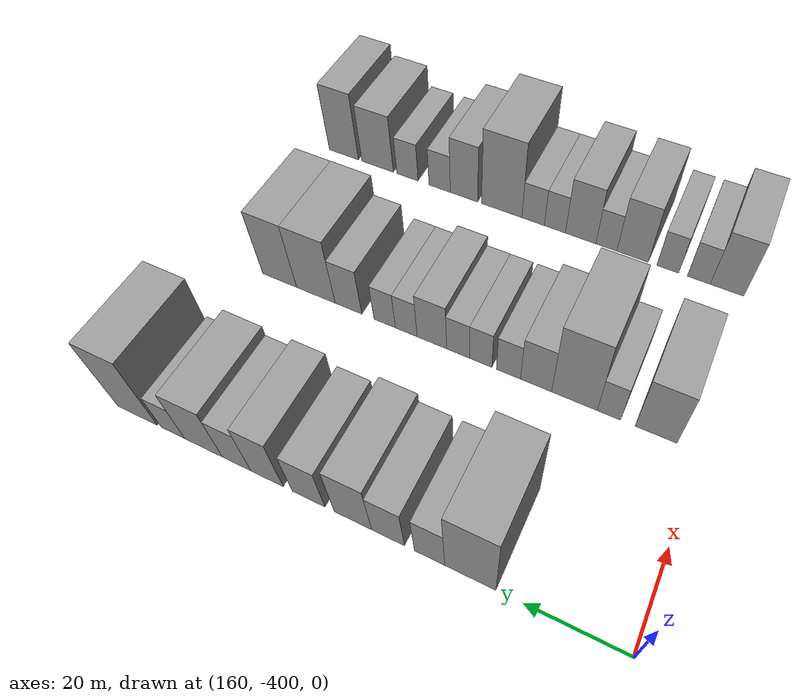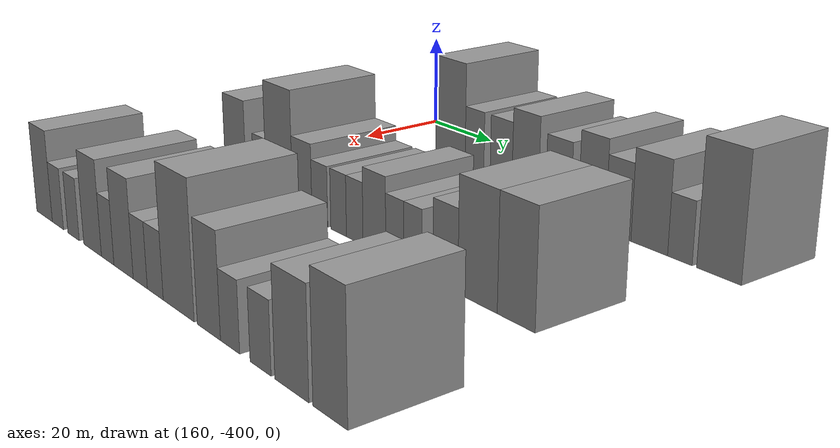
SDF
<sdf version="1.6">
 <world name="default">
  <model name="building_439">
   <static>1</static>
   <pose>170.0000 -370.0522 0 0.000000 0.000000 0.000000</pose>
   <link name="link">
    <pose>0 0 12.00 0 0 0</pose>
    <collision name="collision"><geometry><box><size>20.0000 9.8707 24.0000</size></box></geometry></collision>
    <visual name="visual">
     <cast_shadows>0</cast_shadows>
     <geometry><box><size>20.0000 9.8707 24.0000</size></box></geometry>
     <material>
      <script>
       <uri>model://grey_wall/materials/scripts</uri>
       <uri>model://grey_wall/materials/textures</uri>
       <name>vrc/grey_wall</name>
      </script>
     </material>
    </visual>
   </link>
  </model>
  <model name="building_440">
   <static>1</static>
   <pose>170.0000 -362.1162 0 0.000000 0.000000 0.000000</pose>
   <link name="link">
    <pose>0 0 7.50 0 0 0</pose>
    <collision name="collision"><geometry><box><size>20.0000 6.0013 15.0000</size></box></geometry></collision>
    <visual name="visual">
     <cast_shadows>0</cast_shadows>
     <geometry><box><size>20.0000 6.0013 15.0000</size></box></geometry>
     <material>
      <script>
       <uri>model://grey_wall/materials/scripts</uri>
       <uri>model://grey_wall/materials/textures</uri>
       <name>vrc/grey_wall</name>
      </script>
     </material>
    </visual>
   </link>
  </model>
  <model name="building_441">
   <static>1</static>
   <pose>170.0000 -353.7595 0 0.000000 0.000000 0.000000</pose>
   <link name="link">
    <pose>0 0 7.50 0 0 0</pose>
    <collision name="collision"><geometry><box><size>20.0000 6.7121 15.0000</size></box></geometry></collision>
    <visual name="visual">
     <cast_shadows>0</cast_shadows>
     <geometry><box><size>20.0000 6.7121 15.0000</size></box></geometry>
     <material>
      <script>
       <uri>model://grey_wall/materials/scripts</uri>
       <uri>model://grey_wall/materials/textures</uri>
       <name>vrc/grey_wall</name>
      </script>
     </material>
    </visual>
   </link>
  </model>
  <model name="building_442">
   <static>1</static>
   <pose>170.0000 -346.4806 0 0.000000 0.000000 0.000000</pose>
   <link name="link">
    <pose>0 0 9.00 0 0 0</pose>
    <collision name="collision"><geometry><box><size>20.0000 7.8458 18.0000</size></box></geometry></collision>
    <visual name="visual">
     <cast_shadows>0</cast_shadows>
     <geometry><box><size>20.0000 7.8458 18.0000</size></box></geometry>
     <material>
      <script>
       <uri>model://grey_wall/materials/scripts</uri>
       <uri>model://grey_wall/materials/textures</uri>
       <name>vrc/grey_wall</name>
      </script>
     </material>
    </visual>
   </link>
  </model>
  <model name="building_443">
   <static>1</static>
   <pose>170.0000 -337.0107 0 0.000000 0.000000 0.000000</pose>
   <link name="link">
    <pose>0 0 7.50 0 0 0</pose>
    <collision name="collision"><geometry><box><size>20.0000 7.0939 15.0000</size></box></geometry></collision>
    <visual name="visual">
     <cast_shadows>0</cast_shadows>
     <geometry><box><size>20.0000 7.0939 15.0000</size></box></geometry>
     <material>
      <script>
       <uri>model://grey_wall/materials/scripts</uri>
       <uri>model://grey_wall/materials/textures</uri>
       <name>vrc/grey_wall</name>
      </script>
     </material>
    </visual>
   </link>
  </model>
  <model name="building_444">
   <static>1</static>
   <pose>170.0000 -327.8405 0 0.000000 0.000000 0.000000</pose>
   <link name="link">
    <pose>0 0 9.00 0 0 0</pose>
    <collision name="collision"><geometry><box><size>20.0000 7.2463 18.0000</size></box></geometry></collision>
    <visual name="visual">
     <cast_shadows>0</cast_shadows>
     <geometry><box><size>20.0000 7.2463 18.0000</size></box></geometry>
     <material>
      <script>
       <uri>model://grey_wall/materials/scripts</uri>
       <uri>model://grey_wall/materials/textures</uri>
       <name>vrc/grey_wall</name>
      </script>
     </material>
    </visual>
   </link>
  </model>
  <model name="building_445">
   <static>1</static>
   <pose>170.0000 -320.9712 0 0.000000 0.000000 0.000000</pose>
   <link name="link">
    <pose>0 0 7.50 0 0 0</pose>
    <collision name="collision"><geometry><box><size>20.0000 6.4925 15.0000</size></box></geometry></collision>
    <visual name="visual">
     <cast_shadows>0</cast_shadows>
     <geometry><box><size>20.0000 6.4925 15.0000</size></box></geometry>
     <material>
      <script>
       <uri>model://grey_wall/materials/scripts</uri>
       <uri>model://grey_wall/materials/textures</uri>
       <name>vrc/grey_wall</name>
      </script>
     </material>
    </visual>
   </link>
  </model>
  <model name="building_446">
   <static>1</static>
   <pose>170.0000 -313.3001 0 0.000000 0.000000 0.000000</pose>
   <link name="link">
    <pose>0 0 9.00 0 0 0</pose>
    <collision name="collision"><geometry><box><size>20.0000 8.8496 18.0000</size></box></geometry></collision>
    <visual name="visual">
     <cast_shadows>0</cast_shadows>
     <geometry><box><size>20.0000 8.8496 18.0000</size></box></geometry>
     <material>
      <script>
       <uri>model://grey_wall/materials/scripts</uri>
       <uri>model://grey_wall/materials/textures</uri>
       <name>vrc/grey_wall</name>
      </script>
     </material>
    </visual>
   </link>
  </model>
  <model name="building_447">
   <static>1</static>
   <pose>170.0000 -306.0450 0 0.000000 0.000000 0.000000</pose>
   <link name="link">
    <pose>0 0 6.00 0 0 0</pose>
    <collision name="collision"><geometry><box><size>20.0000 5.6607 12.0000</size></box></geometry></collision>
    <visual name="visual">
     <cast_shadows>0</cast_shadows>
     <geometry><box><size>20.0000 5.6607 12.0000</size></box></geometry>
     <material>
      <script>
       <uri>model://grey_wall/materials/scripts</uri>
       <uri>model://grey_wall/materials/textures</uri>
       <name>vrc/grey_wall</name>
      </script>
     </material>
    </visual>
   </link>
  </model>
  <model name="building_448">
   <static>1</static>
   <pose>170.0000 -297.3423 0 0.000000 0.000000 0.000000</pose>
   <link name="link">
    <pose>0 0 12.00 0 0 0</pose>
    <collision name="collision"><geometry><box><size>20.0000 9.7446 24.0000</size></box></geometry></collision>
    <visual name="visual">
     <cast_shadows>0</cast_shadows>
     <geometry><box><size>20.0000 9.7446 24.0000</size></box></geometry>
     <material>
      <script>
       <uri>model://grey_wall/materials/scripts</uri>
       <uri>model://grey_wall/materials/textures</uri>
       <name>vrc/grey_wall</name>
      </script>
     </material>
    </visual>
   </link>
  </model>
  <model name="building_569">
   <static>1</static>
   <pose>210.0000 -391.2524 0 0.000000 0.000000 0.000000</pose>
   <link name="link">
    <pose>0 0 9.00 0 0 0</pose>
    <collision name="collision"><geometry><box><size>20.0000 8.4514 18.0000</size></box></geometry></collision>
    <visual name="visual">
     <cast_shadows>0</cast_shadows>
     <geometry><box><size>20.0000 8.4514 18.0000</size></box></geometry>
     <material>
      <script>
       <uri>model://grey_wall/materials/scripts</uri>
       <uri>model://grey_wall/materials/textures</uri>
       <name>vrc/grey_wall</name>
      </script>
     </material>
    </visual>
   </link>
  </model>
  <model name="building_570">
   <static>1</static>
   <pose>210.0000 -381.5879 0 0.000000 0.000000 0.000000</pose>
   <link name="link">
    <pose>0 0 6.00 0 0 0</pose>
    <collision name="collision"><geometry><box><size>20.0000 4.8775 12.0000</size></box></geometry></collision>
    <visual name="visual">
     <cast_shadows>0</cast_shadows>
     <geometry><box><size>20.0000 4.8775 12.0000</size></box></geometry>
     <material>
      <script>
       <uri>model://grey_wall/materials/scripts</uri>
       <uri>model://grey_wall/materials/textures</uri>
       <name>vrc/grey_wall</name>
      </script>
     </material>
    </visual>
   </link>
  </model>
  <model name="building_571">
   <static>1</static>
   <pose>210.0000 -374.2663 0 0.000000 0.000000 0.000000</pose>
   <link name="link">
    <pose>0 0 12.00 0 0 0</pose>
    <collision name="collision"><geometry><box><size>20.0000 9.7659 24.0000</size></box></geometry></collision>
    <visual name="visual">
     <cast_shadows>0</cast_shadows>
     <geometry><box><size>20.0000 9.7659 24.0000</size></box></geometry>
     <material>
      <script>
       <uri>model://grey_wall/materials/scripts</uri>
       <uri>model://grey_wall/materials/textures</uri>
       <name>vrc/grey_wall</name>
      </script>
     </material>
    </visual>
   </link>
  </model>
  <model name="building_572">
   <static>1</static>
   <pose>210.0000 -365.9811 0 0.000000 0.000000 0.000000</pose>
   <link name="link">
    <pose>0 0 7.50 0 0 0</pose>
    <collision name="collision"><geometry><box><size>20.0000 6.8044 15.0000</size></box></geometry></collision>
    <visual name="visual">
     <cast_shadows>0</cast_shadows>
     <geometry><box><size>20.0000 6.8044 15.0000</size></box></geometry>
     <material>
      <script>
       <uri>model://grey_wall/materials/scripts</uri>
       <uri>model://grey_wall/materials/textures</uri>
       <name>vrc/grey_wall</name>
      </script>
     </material>
    </visual>
   </link>
  </model>
  <model name="building_573">
   <static>1</static>
   <pose>210.0000 -359.8956 0 0.000000 0.000000 0.000000</pose>
   <link name="link">
    <pose>0 0 6.00 0 0 0</pose>
    <collision name="collision"><geometry><box><size>20.0000 5.3666 12.0000</size></box></geometry></collision>
    <visual name="visual">
     <cast_shadows>0</cast_shadows>
     <geometry><box><size>20.0000 5.3666 12.0000</size></box></geometry>
     <material>
      <script>
       <uri>model://grey_wall/materials/scripts</uri>
       <uri>model://grey_wall/materials/textures</uri>
       <name>vrc/grey_wall</name>
      </script>
     </material>
    </visual>
   </link>
  </model>
  <model name="building_574">
   <static>1</static>
   <pose>210.0000 -353.6460 0 0.000000 0.000000 0.000000</pose>
   <link name="link">
    <pose>0 0 6.00 0 0 0</pose>
    <collision name="collision"><geometry><box><size>20.0000 5.1326 12.0000</size></box></geometry></collision>
    <visual name="visual">
     <cast_shadows>0</cast_shadows>
     <geometry><box><size>20.0000 5.1326 12.0000</size></box></geometry>
     <material>
      <script>
       <uri>model://grey_wall/materials/scripts</uri>
       <uri>model://grey_wall/materials/textures</uri>
       <name>vrc/grey_wall</name>
      </script>
     </material>
    </visual>
   </link>
  </model>
  <model name="building_575">
   <static>1</static>
   <pose>210.0000 -348.4470 0 0.000000 0.000000 0.000000</pose>
   <link name="link">
    <pose>0 0 6.00 0 0 0</pose>
    <collision name="collision"><geometry><box><size>20.0000 5.2654 12.0000</size></box></geometry></collision>
    <visual name="visual">
     <cast_shadows>0</cast_shadows>
     <geometry><box><size>20.0000 5.2654 12.0000</size></box></geometry>
     <material>
      <script>
       <uri>model://grey_wall/materials/scripts</uri>
       <uri>model://grey_wall/materials/textures</uri>
       <name>vrc/grey_wall</name>
      </script>
     </material>
    </visual>
   </link>
  </model>
  <model name="building_576">
   <static>1</static>
   <pose>210.0000 -342.3441 0 0.000000 0.000000 0.000000</pose>
   <link name="link">
    <pose>0 0 7.50 0 0 0</pose>
    <collision name="collision"><geometry><box><size>20.0000 6.9403 15.0000</size></box></geometry></collision>
    <visual name="visual">
     <cast_shadows>0</cast_shadows>
     <geometry><box><size>20.0000 6.9403 15.0000</size></box></geometry>
     <material>
      <script>
       <uri>model://grey_wall/materials/scripts</uri>
       <uri>model://grey_wall/materials/textures</uri>
       <name>vrc/grey_wall</name>
      </script>
     </material>
    </visual>
   </link>
  </model>
  <model name="building_577">
   <static>1</static>
   <pose>210.0000 -336.2616 0 0.000000 0.000000 0.000000</pose>
   <link name="link">
    <pose>0 0 6.00 0 0 0</pose>
    <collision name="collision"><geometry><box><size>20.0000 5.2246 12.0000</size></box></geometry></collision>
    <visual name="visual">
     <cast_shadows>0</cast_shadows>
     <geometry><box><size>20.0000 5.2246 12.0000</size></box></geometry>
     <material>
      <script>
       <uri>model://grey_wall/materials/scripts</uri>
       <uri>model://grey_wall/materials/textures</uri>
       <name>vrc/grey_wall</name>
      </script>
     </material>
    </visual>
   </link>
  </model>
  <model name="building_578">
   <static>1</static>
   <pose>210.0000 -331.0444 0 0.000000 0.000000 0.000000</pose>
   <link name="link">
    <pose>0 0 6.00 0 0 0</pose>
    <collision name="collision"><geometry><box><size>20.0000 5.2099 12.0000</size></box></geometry></collision>
    <visual name="visual">
     <cast_shadows>0</cast_shadows>
     <geometry><box><size>20.0000 5.2099 12.0000</size></box></geometry>
     <material>
      <script>
       <uri>model://grey_wall/materials/scripts</uri>
       <uri>model://grey_wall/materials/textures</uri>
       <name>vrc/grey_wall</name>
      </script>
     </material>
    </visual>
   </link>
  </model>
  <model name="building_579">
   <static>1</static>
   <pose>210.0000 -322.0977 0 0.000000 0.000000 0.000000</pose>
   <link name="link">
    <pose>0 0 7.50 0 0 0</pose>
    <collision name="collision"><geometry><box><size>20.0000 6.6834 15.0000</size></box></geometry></collision>
    <visual name="visual">
     <cast_shadows>0</cast_shadows>
     <geometry><box><size>20.0000 6.6834 15.0000</size></box></geometry>
     <material>
      <script>
       <uri>model://grey_wall/materials/scripts</uri>
       <uri>model://grey_wall/materials/textures</uri>
       <name>vrc/grey_wall</name>
      </script>
     </material>
    </visual>
   </link>
  </model>
  <model name="building_580">
   <static>1</static>
   <pose>210.0000 -313.8073 0 0.000000 0.000000 0.000000</pose>
   <link name="link">
    <pose>0 0 10.50 0 0 0</pose>
    <collision name="collision"><geometry><box><size>20.0000 9.8975 21.0000</size></box></geometry></collision>
    <visual name="visual">
     <cast_shadows>0</cast_shadows>
     <geometry><box><size>20.0000 9.8975 21.0000</size></box></geometry>
     <material>
      <script>
       <uri>model://grey_wall/materials/scripts</uri>
       <uri>model://grey_wall/materials/textures</uri>
       <name>vrc/grey_wall</name>
      </script>
     </material>
    </visual>
   </link>
  </model>
  <model name="building_581">
   <static>1</static>
   <pose>210.0000 -304.3984 0 0.000000 0.000000 0.000000</pose>
   <link name="link">
    <pose>0 0 10.50 0 0 0</pose>
    <collision name="collision"><geometry><box><size>20.0000 8.9204 21.0000</size></box></geometry></collision>
    <visual name="visual">
     <cast_shadows>0</cast_shadows>
     <geometry><box><size>20.0000 8.9204 21.0000</size></box></geometry>
     <material>
      <script>
       <uri>model://grey_wall/materials/scripts</uri>
       <uri>model://grey_wall/materials/textures</uri>
       <name>vrc/grey_wall</name>
      </script>
     </material>
    </visual>
   </link>
  </model>
  <model name="building_714">
   <static>1</static>
   <pose>250.0000 -395.0349 0 0.000000 0.000000 0.000000</pose>
   <link name="link">
    <pose>0 0 9.00 0 0 0</pose>
    <collision name="collision"><geometry><box><size>20.0000 7.5111 18.0000</size></box></geometry></collision>
    <visual name="visual">
     <cast_shadows>0</cast_shadows>
     <geometry><box><size>20.0000 7.5111 18.0000</size></box></geometry>
     <material>
      <script>
       <uri>model://grey_wall/materials/scripts</uri>
       <uri>model://grey_wall/materials/textures</uri>
       <name>vrc/grey_wall</name>
      </script>
     </material>
    </visual>
   </link>
  </model>
  <model name="building_715">
   <static>1</static>
   <pose>250.0000 -388.6736 0 0.000000 0.000000 0.000000</pose>
   <link name="link">
    <pose>0 0 6.00 0 0 0</pose>
    <collision name="collision"><geometry><box><size>20.0000 5.2116 12.0000</size></box></geometry></collision>
    <visual name="visual">
     <cast_shadows>0</cast_shadows>
     <geometry><box><size>20.0000 5.2116 12.0000</size></box></geometry>
     <material>
      <script>
       <uri>model://grey_wall/materials/scripts</uri>
       <uri>model://grey_wall/materials/textures</uri>
       <name>vrc/grey_wall</name>
      </script>
     </material>
    </visual>
   </link>
  </model>
  <model name="building_716">
   <static>1</static>
   <pose>250.0000 -381.5344 0 0.000000 0.000000 0.000000</pose>
   <link name="link">
    <pose>0 0 6.00 0 0 0</pose>
    <collision name="collision"><geometry><box><size>20.0000 5.0667 12.0000</size></box></geometry></collision>
    <visual name="visual">
     <cast_shadows>0</cast_shadows>
     <geometry><box><size>20.0000 5.0667 12.0000</size></box></geometry>
     <material>
      <script>
       <uri>model://grey_wall/materials/scripts</uri>
       <uri>model://grey_wall/materials/textures</uri>
       <name>vrc/grey_wall</name>
      </script>
     </material>
    </visual>
   </link>
  </model>
  <model name="building_717">
   <static>1</static>
   <pose>250.0000 -373.2602 0 0.000000 0.000000 0.000000</pose>
   <link name="link">
    <pose>0 0 9.00 0 0 0</pose>
    <collision name="collision"><geometry><box><size>20.0000 7.4817 18.0000</size></box></geometry></collision>
    <visual name="visual">
     <cast_shadows>0</cast_shadows>
     <geometry><box><size>20.0000 7.4817 18.0000</size></box></geometry>
     <material>
      <script>
       <uri>model://grey_wall/materials/scripts</uri>
       <uri>model://grey_wall/materials/textures</uri>
       <name>vrc/grey_wall</name>
      </script>
     </material>
    </visual>
   </link>
  </model>
  <model name="building_718">
   <static>1</static>
   <pose>250.0000 -366.9772 0 0.000000 0.000000 0.000000</pose>
   <link name="link">
    <pose>0 0 6.00 0 0 0</pose>
    <collision name="collision"><geometry><box><size>20.0000 5.0844 12.0000</size></box></geometry></collision>
    <visual name="visual">
     <cast_shadows>0</cast_shadows>
     <geometry><box><size>20.0000 5.0844 12.0000</size></box></geometry>
     <material>
      <script>
       <uri>model://grey_wall/materials/scripts</uri>
       <uri>model://grey_wall/materials/textures</uri>
       <name>vrc/grey_wall</name>
      </script>
     </material>
    </visual>
   </link>
  </model>
  <model name="building_719">
   <static>1</static>
   <pose>250.0000 -360.6798 0 0.000000 0.000000 0.000000</pose>
   <link name="link">
    <pose>0 0 9.00 0 0 0</pose>
    <collision name="collision"><geometry><box><size>20.0000 7.5104 18.0000</size></box></geometry></collision>
    <visual name="visual">
     <cast_shadows>0</cast_shadows>
     <geometry><box><size>20.0000 7.5104 18.0000</size></box></geometry>
     <material>
      <script>
       <uri>model://grey_wall/materials/scripts</uri>
       <uri>model://grey_wall/materials/textures</uri>
       <name>vrc/grey_wall</name>
      </script>
     </material>
    </visual>
   </link>
  </model>
  <model name="building_720">
   <static>1</static>
   <pose>250.0000 -354.2950 0 0.000000 0.000000 0.000000</pose>
   <link name="link">
    <pose>0 0 6.00 0 0 0</pose>
    <collision name="collision"><geometry><box><size>20.0000 5.2592 12.0000</size></box></geometry></collision>
    <visual name="visual">
     <cast_shadows>0</cast_shadows>
     <geometry><box><size>20.0000 5.2592 12.0000</size></box></geometry>
     <material>
      <script>
       <uri>model://grey_wall/materials/scripts</uri>
       <uri>model://grey_wall/materials/textures</uri>
       <name>vrc/grey_wall</name>
      </script>
     </material>
    </visual>
   </link>
  </model>
  <model name="building_721">
   <static>1</static>
   <pose>250.0000 -348.8041 0 0.000000 0.000000 0.000000</pose>
   <link name="link">
    <pose>0 0 6.00 0 0 0</pose>
    <collision name="collision"><geometry><box><size>20.0000 5.7226 12.0000</size></box></geometry></collision>
    <visual name="visual">
     <cast_shadows>0</cast_shadows>
     <geometry><box><size>20.0000 5.7226 12.0000</size></box></geometry>
     <material>
      <script>
       <uri>model://grey_wall/materials/scripts</uri>
       <uri>model://grey_wall/materials/textures</uri>
       <name>vrc/grey_wall</name>
      </script>
     </material>
    </visual>
   </link>
  </model>
  <model name="building_722">
   <static>1</static>
   <pose>250.0000 -340.6876 0 0.000000 0.000000 0.000000</pose>
   <link name="link">
    <pose>0 0 12.00 0 0 0</pose>
    <collision name="collision"><geometry><box><size>20.0000 10.5104 24.0000</size></box></geometry></collision>
    <visual name="visual">
     <cast_shadows>0</cast_shadows>
     <geometry><box><size>20.0000 10.5104 24.0000</size></box></geometry>
     <material>
      <script>
       <uri>model://grey_wall/materials/scripts</uri>
       <uri>model://grey_wall/materials/textures</uri>
       <name>vrc/grey_wall</name>
      </script>
     </material>
    </visual>
   </link>
  </model>
  <model name="building_723">
   <static>1</static>
   <pose>250.0000 -330.7716 0 0.000000 0.000000 0.000000</pose>
   <link name="link">
    <pose>0 0 9.00 0 0 0</pose>
    <collision name="collision"><geometry><box><size>20.0000 7.3216 18.0000</size></box></geometry></collision>
    <visual name="visual">
     <cast_shadows>0</cast_shadows>
     <geometry><box><size>20.0000 7.3216 18.0000</size></box></geometry>
     <material>
      <script>
       <uri>model://grey_wall/materials/scripts</uri>
       <uri>model://grey_wall/materials/textures</uri>
       <name>vrc/grey_wall</name>
      </script>
     </material>
    </visual>
   </link>
  </model>
  <model name="building_724">
   <static>1</static>
   <pose>250.0000 -324.2247 0 0.000000 0.000000 0.000000</pose>
   <link name="link">
    <pose>0 0 6.00 0 0 0</pose>
    <collision name="collision"><geometry><box><size>20.0000 5.7721 12.0000</size></box></geometry></collision>
    <visual name="visual">
     <cast_shadows>0</cast_shadows>
     <geometry><box><size>20.0000 5.7721 12.0000</size></box></geometry>
     <material>
      <script>
       <uri>model://grey_wall/materials/scripts</uri>
       <uri>model://grey_wall/materials/textures</uri>
       <name>vrc/grey_wall</name>
      </script>
     </material>
    </visual>
   </link>
  </model>
  <model name="building_725">
   <static>1</static>
   <pose>250.0000 -315.3872 0 0.000000 0.000000 0.000000</pose>
   <link name="link">
    <pose>0 0 6.00 0 0 0</pose>
    <collision name="collision"><geometry><box><size>20.0000 5.9029 12.0000</size></box></geometry></collision>
    <visual name="visual">
     <cast_shadows>0</cast_shadows>
     <geometry><box><size>20.0000 5.9029 12.0000</size></box></geometry>
     <material>
      <script>
       <uri>model://grey_wall/materials/scripts</uri>
       <uri>model://grey_wall/materials/textures</uri>
       <name>vrc/grey_wall</name>
      </script>
     </material>
    </visual>
   </link>
  </model>
  <model name="building_726">
   <static>1</static>
   <pose>250.0000 -306.9793 0 0.000000 0.000000 0.000000</pose>
   <link name="link">
    <pose>0 0 9.00 0 0 0</pose>
    <collision name="collision"><geometry><box><size>20.0000 8.9131 18.0000</size></box></geometry></collision>
    <visual name="visual">
     <cast_shadows>0</cast_shadows>
     <geometry><box><size>20.0000 8.9131 18.0000</size></box></geometry>
     <material>
      <script>
       <uri>model://grey_wall/materials/scripts</uri>
       <uri>model://grey_wall/materials/textures</uri>
       <name>vrc/grey_wall</name>
      </script>
     </material>
    </visual>
   </link>
  </model>
  <model name="building_727">
   <static>1</static>
   <pose>250.0000 -297.3043 0 0.000000 0.000000 0.000000</pose>
   <link name="link">
    <pose>0 0 10.50 0 0 0</pose>
    <collision name="collision"><geometry><box><size>20.0000 8.4367 21.0000</size></box></geometry></collision>
    <visual name="visual">
     <cast_shadows>0</cast_shadows>
     <geometry><box><size>20.0000 8.4367 21.0000</size></box></geometry>
     <material>
      <script>
       <uri>model://grey_wall/materials/scripts</uri>
       <uri>model://grey_wall/materials/textures</uri>
       <name>vrc/grey_wall</name>
      </script>
     </material>
    </visual>
   </link>
  </model>
 </world>
</sdf>
